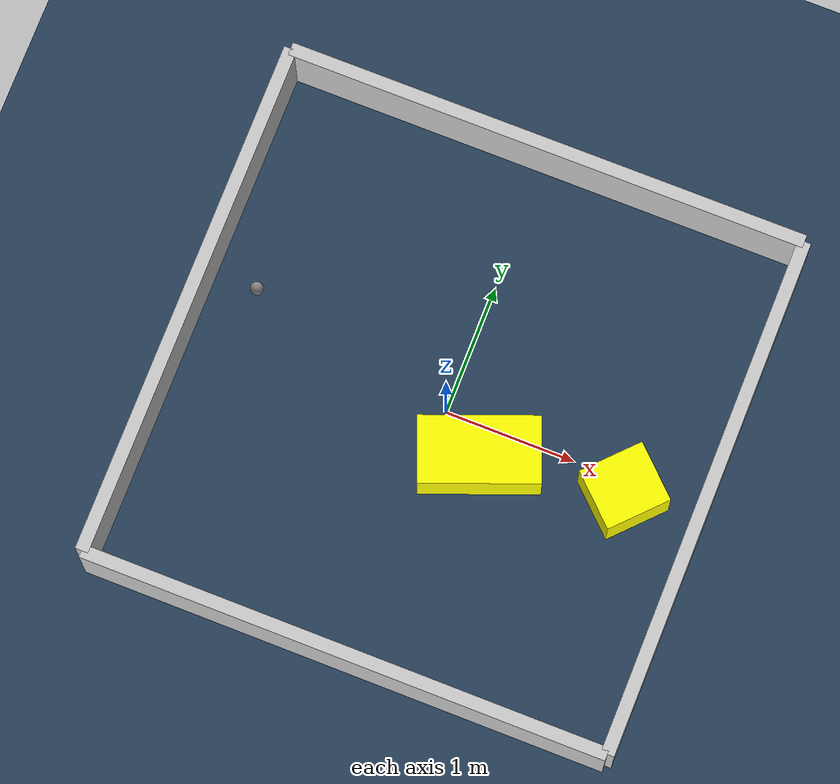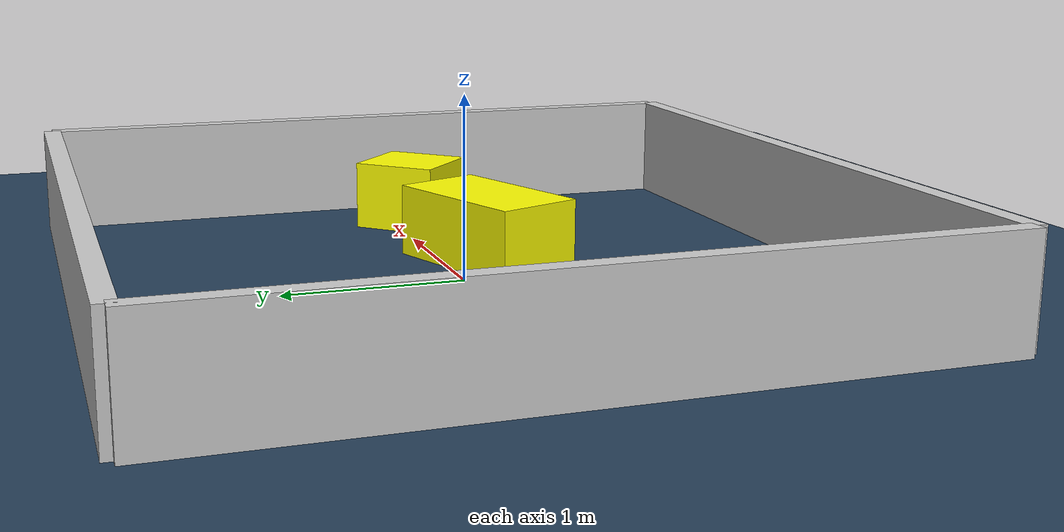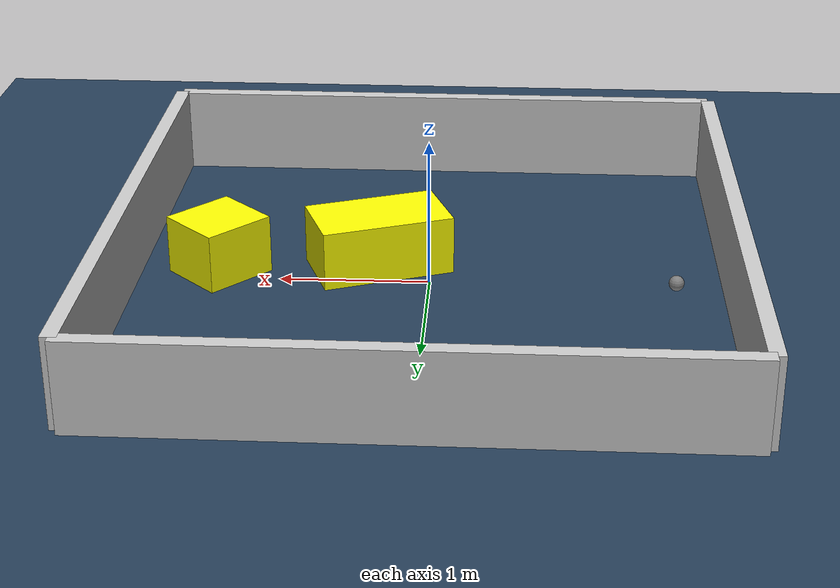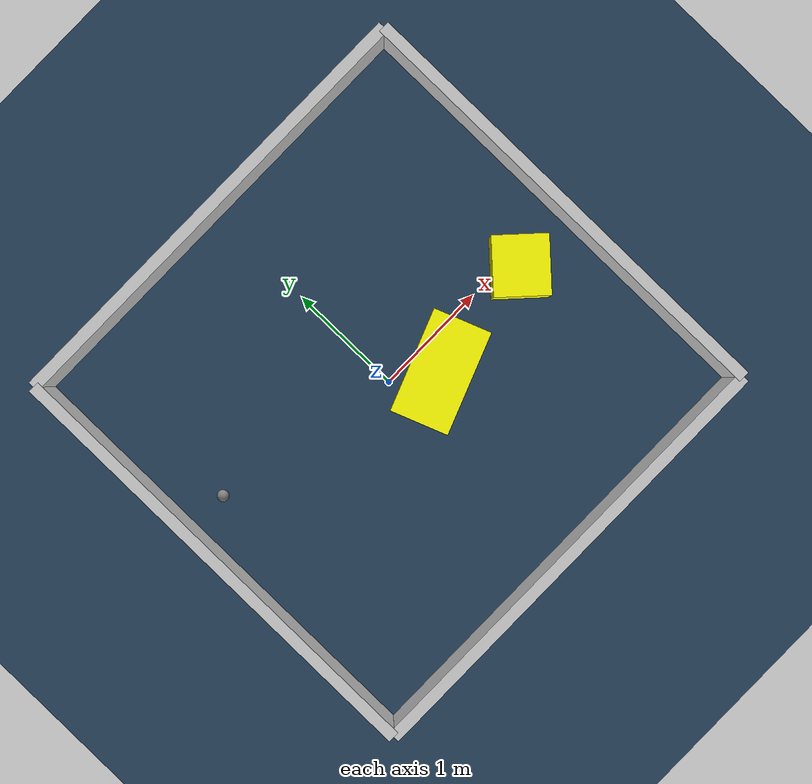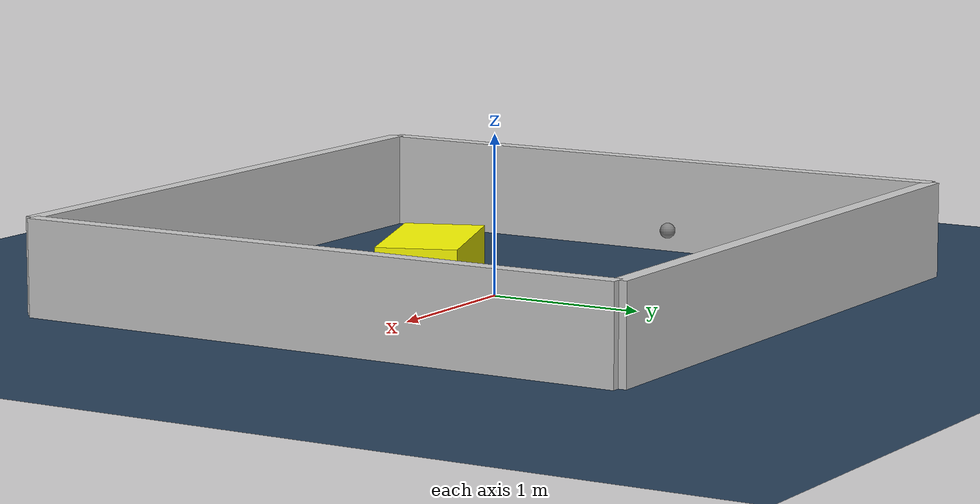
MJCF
<?xml version="1.0" ?>
<mujoco model="generated_environment">
  <option timestep="0.01" integrator="RK4" cone="elliptic"/>
  <default>
    <geom density="1"/>
  </default>
  <asset>
    <texture builtin="gradient" height="3072" rgb1="0.3 0.5 0.7" rgb2="0 0 0" type="skybox" width="512"/>
    <texture builtin="checker" height="300" mark="edge" markrgb="0.8 0.8 0.8" name="groundplane" rgb1="0.2 0.3 0.4" rgb2="0.1 0.2 0.3" type="2d" width="300"/>
    <material name="groundplane" reflectance="0.2" texrepeat="5 5" texture="groundplane" texuniform="true"/>
    <material name="robot" rgba="0.0 1.0 0.0 1"/>
  </asset>
  <worldbody>
    <light dir="0 0 -1" directional="true" pos="0 0 1.5"/>
    <geom condim="4" friction="1.0 0.005 0.001" material="groundplane" name="floor" size="0 0 0.05" type="plane"/>
    <body name="walls">
      <geom name="wall_1" condim="4" pos="-2.0 0.0 0.3" rgba="0.800000011920929 0.800000011920929 0.800000011920929 1.0" size="0.05 2.0 0.3" type="box"/>
      <geom name="wall_2" condim="4" pos="2.0 0.0 0.3" rgba="0.800000011920929 0.800000011920929 0.800000011920929 1.0" size="0.05 2.0 0.3" type="box"/>
      <geom name="wall_3" condim="4" pos="0.0 -2.0 0.3" rgba="0.800000011920929 0.800000011920929 0.800000011920929 1.0" size="2.0 0.05 0.3" type="box"/>
      <geom name="wall_4" condim="4" pos="0.0 2.0 0.3" rgba="0.800000011920929 0.800000011920929 0.800000011920929 1.0" size="2.0 0.05 0.3" type="box"/>
    </body>
    <body name="robot">
      <joint name="joint_x" type="slide" pos="0 0 0" axis="1 0 0"/>
      <joint name="joint_y" type="slide" pos="0 0 0" axis="0 1 0"/>
      <geom name="robot" type="sphere" pos="-1.6094594640242177 0.3234927063049611 0.2" size="0.05" mass="5." friction="1.0 0.005 0.0001" condim="4"/>
      <site name="sensor_ball"/>
    </body>
    <body name="obstacle_1_movable">
      <geom name="obstacle_1_movable" condim="4" pos="1.4219882961273516 -0.11074720583613162 0.2" euler="0 0 136.59390584627167" friction="1.0 0.005 0.001" rgba="1 1 0 1" size="0.23622957090524435 0.25235533607561333 0.2" type="box" mass="0.1"/>
      <joint type="free"/>
    </body>
    <body name="obstacle_2_movable">
      <geom name="obstacle_2_movable" condim="4" pos="0.3528224215074047 -0.24388071328943073 0.2" euler="0 0 200.9944154784123" friction="1.0 0.005 0.001" rgba="1 1 0 1" size="0.45051443186502743 0.25209113820627727 0.2" type="box" mass="0.1"/>
      <joint type="free"/>
    </body>
  </worldbody>
  <actuator>
    <motor name="actuator_x" joint="joint_x" gear="1" ctrlrange="-1 1"/>
    <motor name="actuator_y" joint="joint_y" gear="1" ctrlrange="-1 1"/>
  </actuator>
</mujoco>
